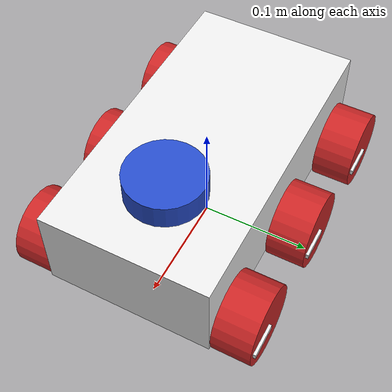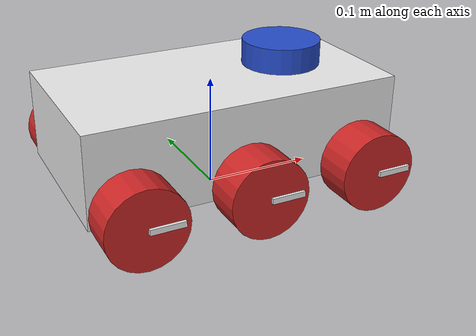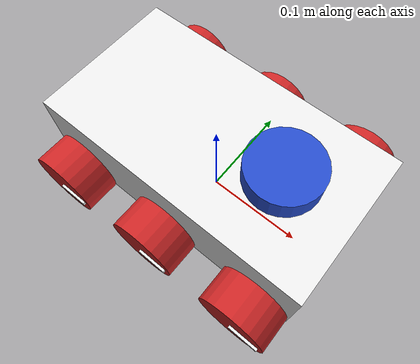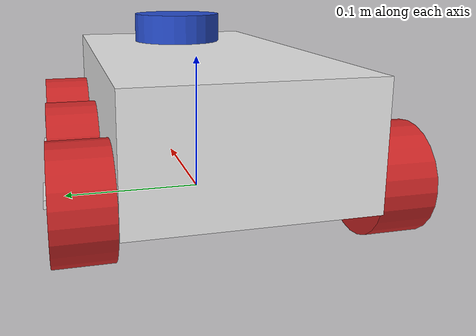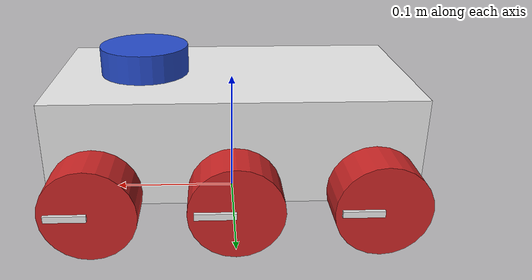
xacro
<?xml version="1.0" encoding="utf-8"?>
<robot name="smallbot"
	xmlns:xacro="http://www.ros.org/wiki/xacro">
	<!-- Matherials -->
	<xacro:include filename="$(find smallbot_description)/urdf/smallbot_materials.xacro" />
    <!-- Gazebo parameters -->
    <xacro:include filename="$(find smallbot_description)/urdf/smallbot.gazebo" />
    <xacro:property name="clearance" value="0.035" />
    <xacro:property name="wheel_radius" value="0.035"/>
    <xacro:property name="wheel_separation" value="0.15"/>
    <xacro:property name="wheel_width" value="0.035"/>
    <xacro:property name="mass" value="0.1"/>
    <xacro:property name="wheel_mass" value="0.2"/>
    <xacro:property name="marker_mass" value="0.0"/>
    <xacro:property name="inertia" value="0.3"/>
    <xacro:property name="PI" value="3.1415926"/>
    <xacro:property name="wheel_ixx" value="${wheel_mass*(3*wheel_radius*wheel_radius+wheel_width*wheel_width)/12}" />
    <xacro:property name="wheel_ixy" value="0.0" />
    <xacro:property name="wheel_ixz" value="0.0" />
    <xacro:property name="wheel_iyy" value="${wheel_mass*(3*wheel_radius*wheel_radius+wheel_width*wheel_width)/12}" />
    <xacro:property name="wheel_iyz" value="0.0" />
    <xacro:property name="wheel_izz" value="${wheel_mass*wheel_radius*wheel_radius/2}" />
	<!-- smallbot_base -->
    <link name="base_link">
    </link>
	<link name="body_link">
		<visual>
			<origin xyz="0 0 0.03" rpy="0 0 0" />
            <geometry>
                <box size="0.28 ${wheel_separation} 0.08"/>
            </geometry>
			<material name="White" />
		</visual>
		<collision>
			<origin xyz="0 0 0.03" rpy="0 0 0" />
            <geometry>
                <box size="0.28 ${wheel_separation} 0.08"/>
            </geometry>
		</collision>
        <inertial>
            <origin xyz="0 0 0.03" rpy="0 0 0" />
            <mass value="${mass}" />
            <inertia ixx="${inertia}" ixy="0.0" ixz="0.0" iyy="${inertia}" iyz="0.0" izz="${inertia}" />
        </inertial>
	</link>
    <joint name="base_to_body" type="fixed">
        <axis rpy="0 0 0" xyz="0 0 0"/>
        <parent link="base_link" />
        <child link="body_link" />
        <origin xyz="0 0 ${wheel_radius}" rpy="0 0 0"/>
    </joint>
    <!-- Lidar -->
    <link name="rplidar_link">
        <inertial>
            <origin xyz="0 0 0" rpy="0 0 0" />
            <mass value="0.1" />
            <inertia ixx="0.0" ixy="0.0" ixz="0.0" iyy="0.0" iyz="0.0" izz="0.0" />
        </inertial>
        <visual>
            <origin xyz="0 0 0" rpy="0 0 0" />
            <geometry>
                <cylinder radius="0.035" length="0.025"/>
            </geometry>
            <material name="Blue" />
        </visual>
        <collision>
            <origin xyz="0 0 0" rpy="0 0 0"/>
            <geometry>
                <cylinder radius="0.035" length="0.025"/>
            </geometry>
        </collision>
    </link>
    <joint name="joint_sensor_laser" type="fixed">
        <origin xyz="0.07 0 0.08" rpy="0 0 0"/>
        <parent link="body_link"/>
        <child link="rplidar_link"/>
    </joint>
    <!-- Wheels -->
    <link name="rear_left_wheel">
        <visual>
			<origin xyz="0 0 0" rpy="${PI / 2} 0 0" />
            <geometry>
                <cylinder length="${wheel_width}" radius="${wheel_radius}"/>
            </geometry>
            <material name="Red" />
        </visual>
        <collision>
			<origin xyz="0 0 0" rpy="${PI / 2} 0 0" />
            <geometry>
                <cylinder length="${wheel_width}" radius="${wheel_radius}"/>
            </geometry>
        </collision>
        <inertial>
            <mass value="${wheel_mass}" />
            <inertia ixx="${wheel_ixx}" ixy="${wheel_ixy}" ixz="${wheel_ixz}" iyy="${wheel_iyy}" iyz="${wheel_iyz}" izz="${wheel_izz}" />
        </inertial>
    </link>
    <link name="rear_left_wheel_marker">
        <visual>
            <origin xyz="0 0 0" rpy="0 0 0" />
            <geometry>
                <box size="0.03 0.005 0.005" />
            </geometry>
            <material name="White" />
        </visual>
        <inertial>
            <mass value="${marker_mass}" />
            <inertia ixx="0.0" ixy="0.0" ixz="0.0" iyy="0.0" iyz="0.0" izz="0.0" />
        </inertial>
    </link>
    <link name="rear_right_wheel">
        <visual>
			<origin xyz="0 0 0" rpy="${PI / 2} 0 0" />
            <geometry>
                <cylinder length="${wheel_width}" radius="${wheel_radius}"/>
            </geometry>
            <material name="Red" />
        </visual>
        <collision>
			<origin xyz="0 0 0" rpy="${PI / 2} 0 0" />
            <geometry>
                <cylinder length="${wheel_width}" radius="${wheel_radius}"/>
            </geometry>
        </collision>
        <inertial>
            <mass value="${wheel_mass}" />
            <inertia ixx="${wheel_ixx}" ixy="${wheel_ixy}" ixz="${wheel_ixz}" iyy="${wheel_iyy}" iyz="${wheel_iyz}" izz="${wheel_izz}" />
        </inertial>
    </link>
    <link name="rear_right_wheel_marker">
        <visual>
            <origin xyz="0 0 0" rpy="0 0 0" />
            <geometry>
                <box size="0.03 0.005 0.005" />
            </geometry>
            <material name="White" />
        </visual>
        <inertial>
            <mass value="${marker_mass}" />
            <inertia ixx="0.0" ixy="0.0" ixz="0.0" iyy="0.0" iyz="0.0" izz="0.0" />
        </inertial>
    </link>
    <link name="front_left_wheel">
        <visual>
			<origin xyz="0 0 0" rpy="${PI / 2} 0 0" />
            <geometry>
                <cylinder length="${wheel_width}" radius="${wheel_radius}"/>
            </geometry>
            <material name="Red" />
        </visual>
        <collision>
			<origin xyz="0 0 0" rpy="${PI / 2} 0 0" />
            <geometry>
                <cylinder length="${wheel_width}" radius="${wheel_radius}"/>
            </geometry>
        </collision>
        <inertial>
            <mass value="${wheel_mass}" />
            <inertia ixx="${wheel_ixx}" ixy="${wheel_ixy}" ixz="${wheel_ixz}" iyy="${wheel_iyy}" iyz="${wheel_iyz}" izz="${wheel_izz}" />
        </inertial>
    </link>
    <link name="front_left_wheel_marker">
        <visual>
            <origin xyz="0 0 0" rpy="0 0 0" />
            <geometry>
                <box size="0.03 0.005 0.005" />
            </geometry>
            <material name="White" />
        </visual>
        <inertial>
            <mass value="${marker_mass}" />
            <inertia ixx="0.0" ixy="0.0" ixz="0.0" iyy="0.0" iyz="0.0" izz="0.0" />
        </inertial>
    </link>
    <link name="front_right_wheel">
        <visual>
			<origin xyz="0 0 0" rpy="${PI / 2} 0 0" />
            <geometry>
                <cylinder length="${wheel_width}" radius="${wheel_radius}"/>
            </geometry>
            <material name="Red" />
        </visual>
        <collision>
			<origin xyz="0 0 0" rpy="${PI / 2} 0 0" />
            <geometry>
                <cylinder length="${wheel_width}" radius="${wheel_radius}"/>
            </geometry>
        </collision>
        <inertial>
            <mass value="${wheel_mass}" />
            <inertia ixx="${wheel_ixx}" ixy="${wheel_ixy}" ixz="${wheel_ixz}" iyy="${wheel_iyy}" iyz="${wheel_iyz}" izz="${wheel_izz}" />
        </inertial>
    </link>
    <link name="front_right_wheel_marker">
        <visual>
            <origin xyz="0 0 0" rpy="0 0 0" />
            <geometry>
                <box size="0.03 0.005 0.005" />
            </geometry>
            <material name="White" />
        </visual>
        <inertial>
            <mass value="${marker_mass}" />
            <inertia ixx="0.0" ixy="0.0" ixz="0.0" iyy="0.0" iyz="0.0" izz="0.0" />
        </inertial>
    </link>
    <link name="middle_left_wheel">
        <visual>
			<origin xyz="0 0 0" rpy="${PI / 2} 0 0" />
            <geometry>
                <cylinder length="${wheel_width}" radius="${wheel_radius}"/>
            </geometry>
            <material name="Red" />
        </visual>
        <collision>
			<origin xyz="0 0 0" rpy="${PI / 2} 0 0" />
            <geometry>
                <cylinder length="${wheel_width}" radius="${wheel_radius}"/>
            </geometry>
        </collision>
        <inertial>
            <mass value="${wheel_mass}" />
            <inertia ixx="${wheel_ixx}" ixy="${wheel_ixy}" ixz="${wheel_ixz}" iyy="${wheel_iyy}" iyz="${wheel_iyz}" izz="${wheel_izz}" />
        </inertial>
    </link>
    <link name="middle_left_wheel_marker">
        <visual>
            <origin xyz="0 0 0" rpy="0 0 0" />
            <geometry>
                <box size="0.03 0.005 0.005" />
            </geometry>
            <material name="White" />
        </visual>
        <inertial>
            <mass value="${marker_mass}" />
            <inertia ixx="0.0" ixy="0.0" ixz="0.0" iyy="0.0" iyz="0.0" izz="0.0" />
        </inertial>
    </link>
    <link name="middle_right_wheel">
        <visual>
			<origin xyz="0 0 0" rpy="${PI / 2} 0 0" />
            <geometry>
                <cylinder length="${wheel_width}" radius="${wheel_radius}"/>
            </geometry>
            <material name="Red" />
        </visual>
        <collision>
			<origin xyz="0 0 0" rpy="${PI / 2} 0 0" />
            <geometry>
                <cylinder length="${wheel_width}" radius="${wheel_radius}"/>
            </geometry>
        </collision>
        <inertial>
            <mass value="${wheel_mass}" />
            <inertia ixx="${wheel_ixx}" ixy="${wheel_ixy}" ixz="${wheel_ixz}" iyy="${wheel_iyy}" iyz="${wheel_iyz}" izz="${wheel_izz}" />
        </inertial>
    </link>
    <link name="middle_right_wheel_marker">
        <visual>
            <origin xyz="0 0 0" rpy="0 0 0" />
            <geometry>
                <box size="0.03 0.005 0.005" />
            </geometry>
            <material name="White" />
        </visual>
        <inertial>
            <mass value="${marker_mass}" />
            <inertia ixx="0.0" ixy="0.0" ixz="0.0" iyy="0.0" iyz="0.0" izz="0.0" />
        </inertial>
    </link>
    <joint name="base_to_rear_left_wheel" type="continuous">
        <axis rpy="0 0 0" xyz="0 1 0"/>
        <parent link="body_link" />
        <child link="rear_left_wheel" />
        <origin xyz="-0.104 ${wheel_separation/2 + wheel_width/2} 0" rpy="0 0 0"/>
        <dynamics damping="0.0" friction="0.0"/>
        <limit effort= "100" velocity="100"/>
    </joint>
    <joint name="base_to_rear_right_wheel" type="continuous">
        <axis rpy="0 0 0" xyz="0 1 0"/>
        <parent link="body_link" />
        <child link="rear_right_wheel" />
		<origin xyz="-0.104 ${-1 * (wheel_separation/2 + wheel_width/2)} 0" rpy="0 0 0"/>
        <dynamics damping="0.0" friction="0.0"/>
        <limit effort= "100" velocity="100"/>
    </joint>
    <joint name="base_to_front_left_wheel" type="continuous">
        <axis rpy="0 0 0" xyz="0 1 0"/>
        <parent link="body_link" />
        <child link="front_left_wheel" />
		<origin xyz="0.104 ${wheel_separation/2 + wheel_width/2} 0" rpy="0 0 0" />
        <dynamics damping="0.0" friction="0.0"/>
        <limit effort= "100" velocity="100"/>
    </joint>
    <joint name="base_to_front_right_wheel" type="continuous">
        <axis rpy="0 0 0" xyz="0 1 0"/>
        <parent link="body_link" />
        <child link="front_right_wheel" />
		<origin xyz="0.104 ${-1 * (wheel_separation/2 + wheel_width/2)} 0" rpy="0 0 0" />
        <dynamics damping="0.0" friction="0.0"/>
        <limit effort= "100" velocity="100"/>
    </joint>
    <joint name="base_to_middle_left_wheel" type="continuous">
        <axis rpy="0 0 0" xyz="0 1 0"/>
        <parent link="body_link" />
        <child link="middle_left_wheel" />
		<origin xyz="0 ${wheel_separation/2 + wheel_width/2} 0" rpy="0 0 0" />
        <dynamics damping="0.0" friction="0.0"/>
        <limit effort= "100" velocity="100"/>
    </joint>
    <joint name="base_to_middle_right_wheel" type="continuous">
        <axis rpy="0 0 0" xyz="0 1 0"/>
        <parent link="body_link" />
        <child link="middle_right_wheel" />
		<origin xyz="0 ${-1 * (wheel_separation/2 + wheel_width/2)} 0" rpy="0 0 0" />
        <dynamics damping="0.0" friction="0.0"/>
        <limit effort= "100" velocity="100"/>
    </joint>
    <joint name="rear_left_wheel_to_marker" type="fixed">
        <parent link="rear_left_wheel" />
        <child link="rear_left_wheel_marker" />
        <origin xyz="0.015 0.0175 0" rpy="0 0 0" />
    </joint>
    <joint name="rear_right_wheel_to_marker" type="fixed">
        <parent link="rear_right_wheel" />
        <child link="rear_right_wheel_marker" />
        <origin xyz="0.015 -0.0175 0" rpy="0 0 0" />
    </joint>
    <joint name="front_left_wheel_to_marker" type="fixed">
        <parent link="front_left_wheel" />
        <child link="front_left_wheel_marker" />
        <origin xyz="0.015 0.0175 0" rpy="0 0 0" />
    </joint>
    <joint name="front_right_wheel_to_marker" type="fixed">
        <parent link="front_right_wheel" />
        <child link="front_right_wheel_marker" />
        <origin xyz="0.015 -0.0175 0" rpy="0 0 0" />
    </joint>
    <joint name="middle_left_wheel_to_marker" type="fixed">
        <parent link="middle_left_wheel" />
        <child link="middle_left_wheel_marker" />
        <origin xyz="0.015 0.0175 0" rpy="0 0 0" />
    </joint>
    <joint name="middle_right_wheel_to_marker" type="fixed">
        <parent link="middle_right_wheel" />
        <child link="middle_right_wheel_marker" />
        <origin xyz="0.015 -0.0175 0" rpy="0 0 0" />
    </joint>
</robot>
